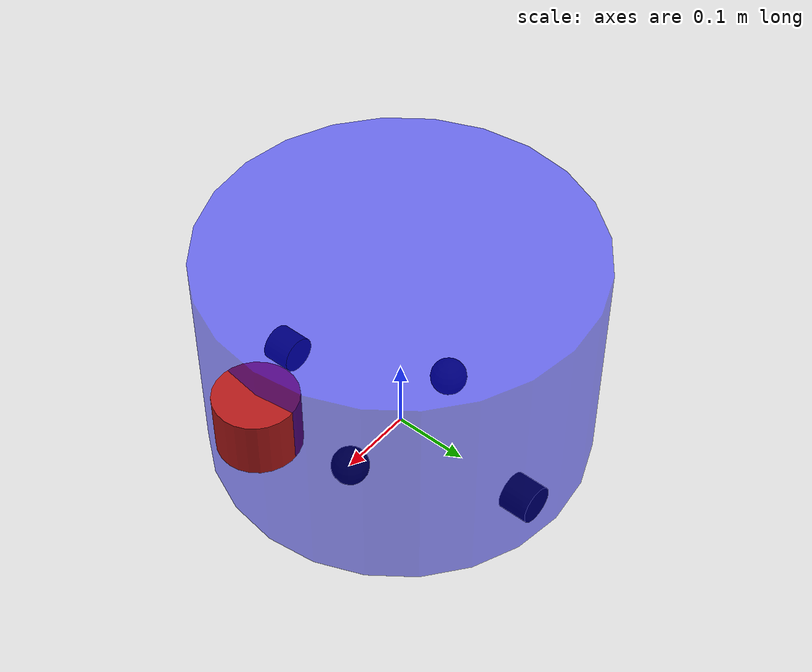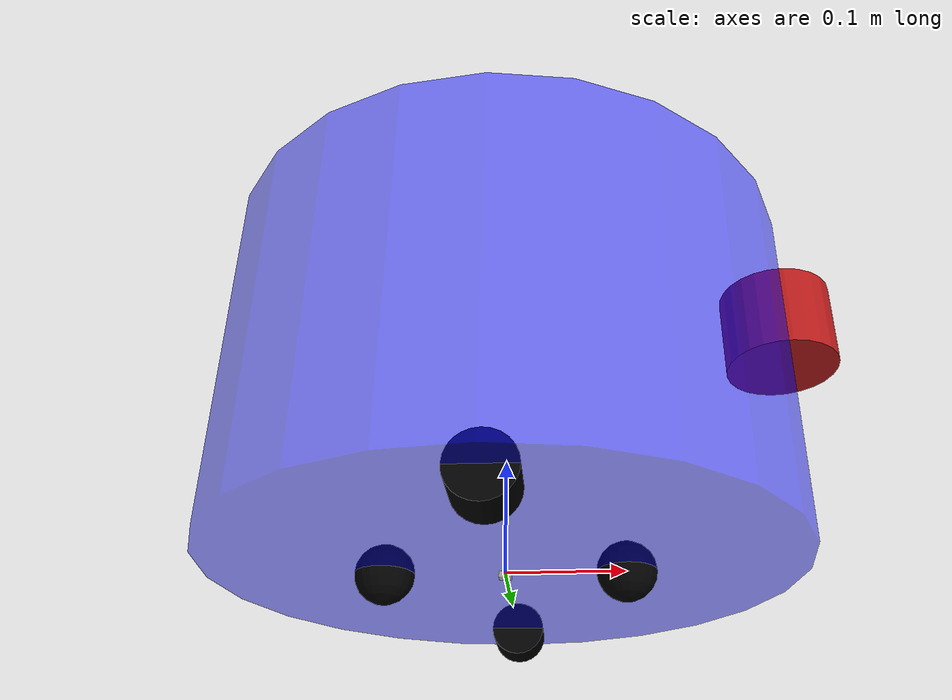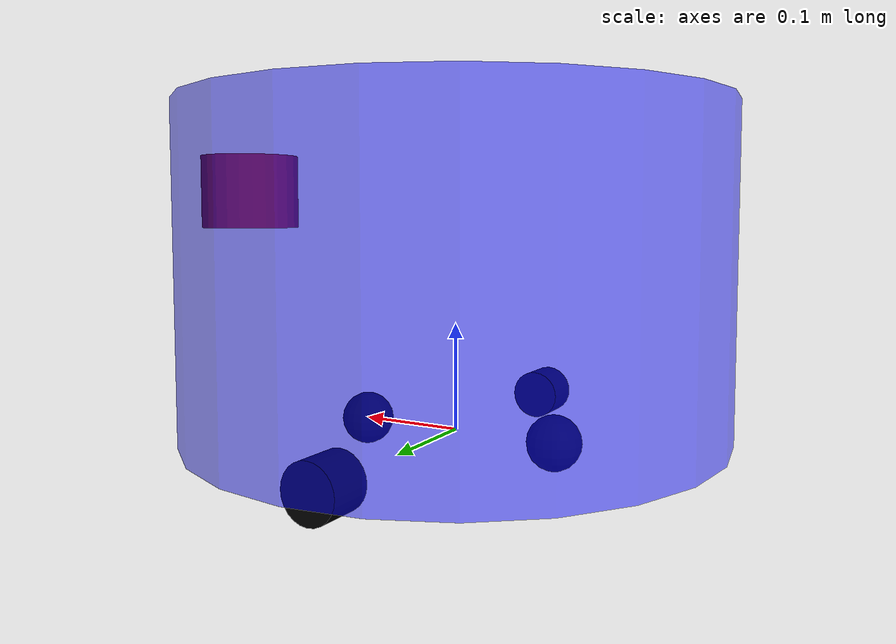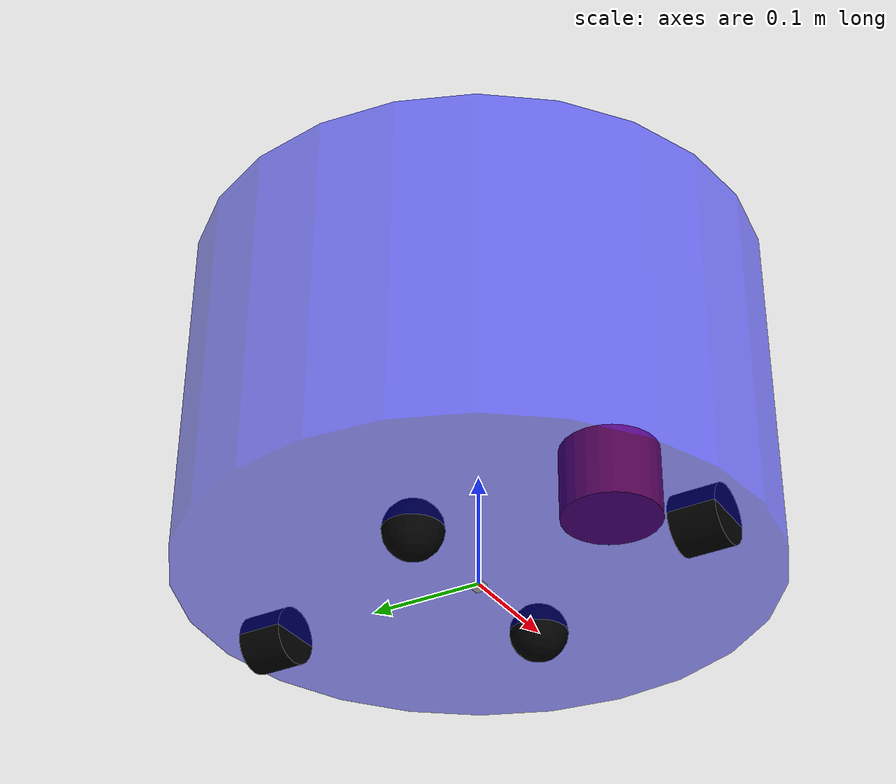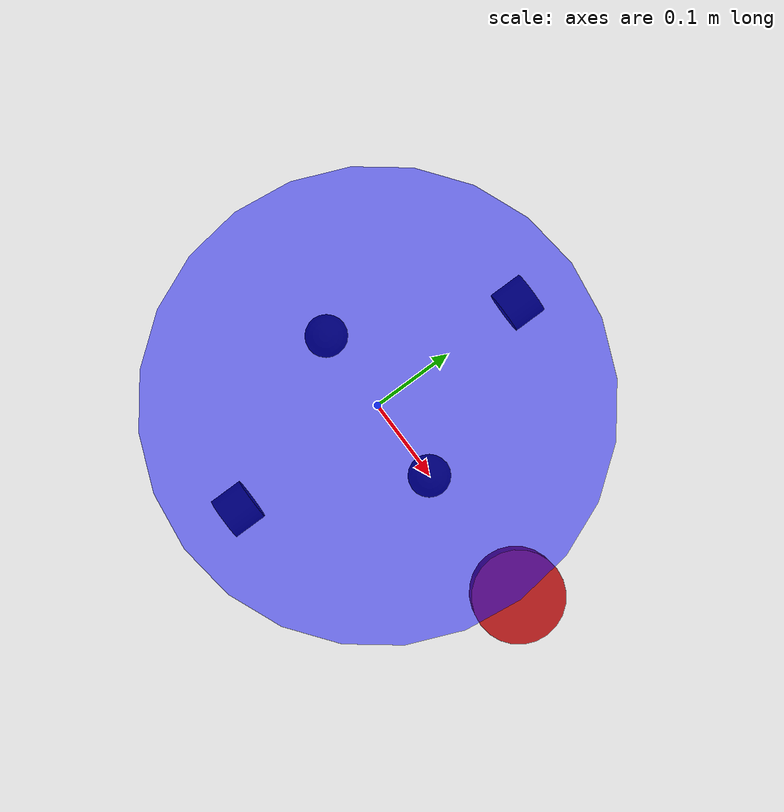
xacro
<?xml version="1.0" ?>

<robot name="robot">
<!-- Material Definitions -->
  <material name="black">
    <color rgba="0 0 0 1"/>
  </material>

  <material name="grey">
    <color rgba="0.5 0.5 0.5 0.7"/>
  </material>

  <material name="blue">
    <color rgba="0 0 1 0.5"/>
  </material>

  <!-- Dummy link for KDL Warning correction-->
  <link name="base_footprint">
    <visual>
        <origin xyz="0 0 0" rpy="0 0 0"/>
        <geometry>
        <box size="0.01 0.01 0.01"/>
        </geometry>
        <material name="grey"/>
    </visual>
  </link>

  <joint name="chassis_joint" type="fixed">
    <origin xyz="0 0 0.15" rpy="0 0 0"/>
    <parent link="base_footprint"/>
    <child link="base_link"/>
  </joint>

  <!-- Base link -->
    <gazebo reference="base_link">
        <material>Gazebo/Black</material>
    </gazebo>

  <link name="base_link">
    <inertial>
      <origin xyz="0 0 0" rpy="0 0 0"/>
      <mass value="25"/> <!-- Robot weight 25 kg -->
      <!-- moment of inertia for cylinder: 1/12*m*(3*r^2 + h^2) for ixx and iyy,
      1/2 * m * r^2 for izz (r=0.25 and m=25)-->
      <inertia ixx="1.3" ixy="0" ixz="0" iyy="1.3" iyz="0" izz="0.52"/>
    </inertial>
    <visual>
      <origin xyz="0 0 0" rpy="0 0 0"/>
      <geometry>
        <cylinder radius="0.25" length="0.3"/>
      </geometry>
      <material name="blue"/>
    </visual>
    <collision>
      <origin xyz="0 0 0.5" rpy="0 0 0"/>
      <geometry>
        <cylinder radius="0.25" length="0.1"/>
      </geometry>
    </collision>
  </link>

<!--Wheel Left-->
  <joint name="left_wheel_joint" type="continuous">
    <parent link="base_link"/>
    <child link="left_wheel"/>
    <origin xyz="0.0 0.2 -0.15" rpy="0 0 0"/>
    <axis xyz="0 1 0"/>
    <limit effort="100" velocity="100" />
    <joint_properties friction="1.0" />
  </joint>

  <link name="left_wheel">
    <inertial>
        <mass value="1" />
        <origin xyz="0 0 0" rpy="0 0 0" />
        <inertia ixx="0.002526666666667" ixy="0" ixz="0" iyy="0.002526666666667" iyz="0" izz="0.005"/>
    </inertial>
    <collision>
        <origin rpy="1.57079632679 0 0" xyz="0 0 0" />
        <geometry>
            <cylinder length="0.04" radius="0.025"/>
        </geometry>
    </collision>
    <visual>
      <origin xyz="0 0 0" rpy="1.5708 0 0"/>
      <geometry>
        <cylinder radius="0.025" length="0.04"/>
      </geometry>
      <material name="black"/>
    </visual>
  </link>
    <gazebo reference="left_wheel">
        <material>Gazebo/Red</material>
    </gazebo>

<!--Wheel Right-->
  <joint name="right_wheel_joint" type="continuous">
    <parent link="base_link"/>
    <child link="right_wheel"/>
    <origin xyz="0.0 -0.2 -0.15" rpy="0 0 0"/>
    <axis xyz="0 1 0"/>
    <limit effort="100" velocity="100" />
    <joint_properties friction="1.0" />
  </joint>

  <link name="right_wheel">
    <inertial>
        <mass value="1" />
        <origin xyz="0 0 0" rpy="0 0 0" />
        <inertia ixx="0.002526666666667" ixy="0" ixz="0" iyy="0.002526666666667" iyz="0" izz="0.005"/>
    </inertial>
    <collision>
        <origin rpy="1.57079632679 0 0" xyz="0 0 0" />
        <geometry>
            <cylinder length="0.04" radius="0.025"/>
        </geometry>
    </collision>
    <visual>
      <origin xyz="0 0 0" rpy="1.5708 0 0"/>
      <geometry>
        <cylinder radius="0.025" length="0.04"/>
      </geometry>
      <material name="black"/>
    </visual>
  </link>
    <gazebo reference="right_wheel">
        <material>Gazebo/Red</material>
    </gazebo>

  <gazebo reference="right_wheel">
    <material>Gazebo/Red</material>
    <surface>
        <friction>
        <ode>
            <mu>1.5</mu>
            <mu2>1.5</mu2>
        </ode>
        </friction>
    </surface>
  </gazebo>
  <gazebo reference="left_wheel">
    <material>Gazebo/Red</material>
    <surface>
        <friction>
        <ode>
            <mu>1.5</mu>
            <mu2>1.5</mu2>
        </ode>
        </friction>
    </surface>
  </gazebo>

  <!-- caster wheel -->
<link name="front_castor">
    <inertial>
        <mass value="0.1" />
        <inertia ixx="0.0001" iyy="0.0001" izz="0.0001" ixy="0.0" ixz="0.0" iyz="0.0"/>
    </inertial>
    <visual>
        <origin xyz="0 0 0" rpy="0 0 0"/>
        <geometry>
            <sphere radius="0.025"/>
        </geometry>
        <material name="black"/>
    </visual>
    <collision>
        <origin xyz="0 0 0" rpy="0 0 0"/>
        <geometry>
            <sphere radius="0.025"/>
        </geometry>
    </collision>
</link>

<!-- Front caster wheel joint -->
<joint name="front_castor_joint" type="fixed">
    <origin xyz="-0.1 0.0 -0.15" rpy="0 0 0"/>
    <parent link="base_link"/>
    <child link="front_castor"/>
</joint>

<!-- Gazebo plugin for front caster wheel to set friction to zero -->
<gazebo reference="front_castor">
    <material>Gazebo/White</material>
    <mu1>0.0</mu1> <!-- Friction parameter -->
    <mu2>0.0</mu2> <!-- Friction parameter -->
</gazebo>

<!-- Back caster wheel link -->
<link name="back_castor">
    <inertial>
        <mass value="0.1" />
        <inertia ixx="0.0001" iyy="0.0001" izz="0.0001" ixy="0.0" ixz="0.0" iyz="0.0"/>
    </inertial>
    <visual>
        <origin xyz="0 0 0" rpy="0 0 0"/>
        <geometry>
            <sphere radius="0.025"/>
        </geometry>
        <material name="black"/>
    </visual>
    <collision>
        <origin xyz="0 0 0" rpy="0 0 0"/>
        <geometry>
            <sphere radius="0.025"/>
        </geometry>
    </collision>
</link>

<!-- Back caster wheel joint -->
<joint name="back_castor_joint" type="fixed">
    <origin xyz="0.1 0.0 -0.15" rpy="0 0 0"/>
    <parent link="base_link"/>
    <child link="back_castor"/>
</joint>

<!-- Gazebo plugin for back caster wheel to set friction to zero -->
<gazebo reference="back_castor">
    <material>Gazebo/White</material>
    <mu1>0.0</mu1> <!-- Friction parameter -->
    <mu2>0.0</mu2> <!-- Friction parameter -->
</gazebo>

    <gazebo>
        <plugin filename="libgazebo_ros_diff_drive.so" name="differential_drive_controller">
            <alwaysOn>true</alwaysOn>
            <!-- Set the update rate in Hz -->
            <updateRate>20.0</updateRate>

            <!-- Name of the left joint -->
            <leftJoint>left_wheel_joint</leftJoint>

            <!-- Name of the right joint -->
            <rightJoint>right_wheel_joint</rightJoint>

            <!-- The distance from the center of one wheel to the other, in meters -->
            <wheelSeparation>0.4</wheelSeparation>

            <!-- Diameter of the wheels, in meters -->
            <wheelDiameter>0.05</wheelDiameter>

            <!-- Wheel acceleration, in rad/s^2 -->
            <wheelAcceleration>1.0</wheelAcceleration>

            <!-- Maximum torque which the wheels can produce, in Nm -->
            <wheelTorque>20</wheelTorque>

            <!-- Topic to receive geometry_msgs/Twist message commands -->
            <commandTopic>/cmd_vel</commandTopic>

            <!-- Topic to publish nav_msgs/Odometry messages -->
            <odometryTopic>odom</odometryTopic>

            <!-- Odometry frame -->
            <odometryFrame>odom</odometryFrame>

            <!-- Robot frame to calculate odometry from -->
            <robotBaseFrame>base_link</robotBaseFrame>

            <!-- Set to true to publish transforms for the wheel links -->
            <publishWheelTF>true</publishWheelTF>

            <!-- Set to true to publish transforms for the odometry -->

            <!-- Set to true to publish sensor_msgs/JointState on /joint_states for the wheel joints -->

            <!-- Set to true to swap right and left wheels -->

            <!-- Set the debug level -->
            <rosDebugLevel>debug</rosDebugLevel>

            <!-- Publish odometry transforms -->

            <!-- Specify the odometry source -->
        </plugin>
    </gazebo>

    <!-- Gazebo tags - Laser scan -->
    <gazebo reference="joint_laser_scan_chassis">
        <preserveFixedJoint>true</preserveFixedJoint>
    </gazebo>
    <gazebo reference="link_laser_scan">
        <material>Gazebo/DarkGrey</material>
    </gazebo>

    <!-- Laser scan -->
    <joint name="joint_laser_scan_chassis" type="fixed">
        <origin xyz="0.25 0 0.075" rpy="3.14159 0 0"/> <!--laser upside down by pi radians-->
        <child link="link_laser_scan" />
        <parent link="base_link" />
        <joint_properties damping="1.0" friction="1.0" />
    </joint>
    <link name="link_laser_scan">
        <inertial>
            <origin xyz="0 0 0" rpy="0 0 0" />
            <mass value="0.5" />
            <inertia ixx="0.000252666666667" ixy="0" ixz="0" iyy="0.000252666666667" iyz="0" izz="0.0005"/>
        </inertial>
        <visual>
            <origin xyz="0 0 0" rpy="0 0 0" />
            <geometry>
                <cylinder radius="0.05" length="0.075"/>
            </geometry>
            <material name="Red">
                <color rgba="0.7 0.1 0.1 1" />
            </material>
        </visual>
        <collision>
            <origin xyz="0 0 0" rpy="0 0 0"/>
            <geometry>
                <cylinder radius="0.05" length="0.075"/>
            </geometry>
        </collision>
    </link>

    <gazebo reference="link_laser_scan">
        <sensor type="ray" name="head_hokuyo_sensor">
            <pose>0 0 0 0 0 0</pose>
            <visualize>true</visualize>
            <update_rate>20</update_rate>
            <ray>
                <scan>
                    <horizontal>
                        <samples>720</samples>
                        <resolution>1</resolution>
                        <min_angle>-1.570796</min_angle>
                        <max_angle>1.570796</max_angle>
                    </horizontal>
                </scan>
                <range>
                    <min>0.20</min>
                    <max>10.0</max>
                    <resolution>0.01</resolution>
                </range>
                <noise>
                    <type>gaussian</type>
                    <mean>0.0</mean>
                    <stddev>0.01</stddev>
                </noise>
            </ray>
            <plugin name="gazebo_ros_head_hokuyo_controller" filename="libgazebo_ros_laser.so">
                <topicName>/scan</topicName>
                <frameName>sensor_laser</frameName>
            </plugin>
        </sensor>
    </gazebo>

</robot>
